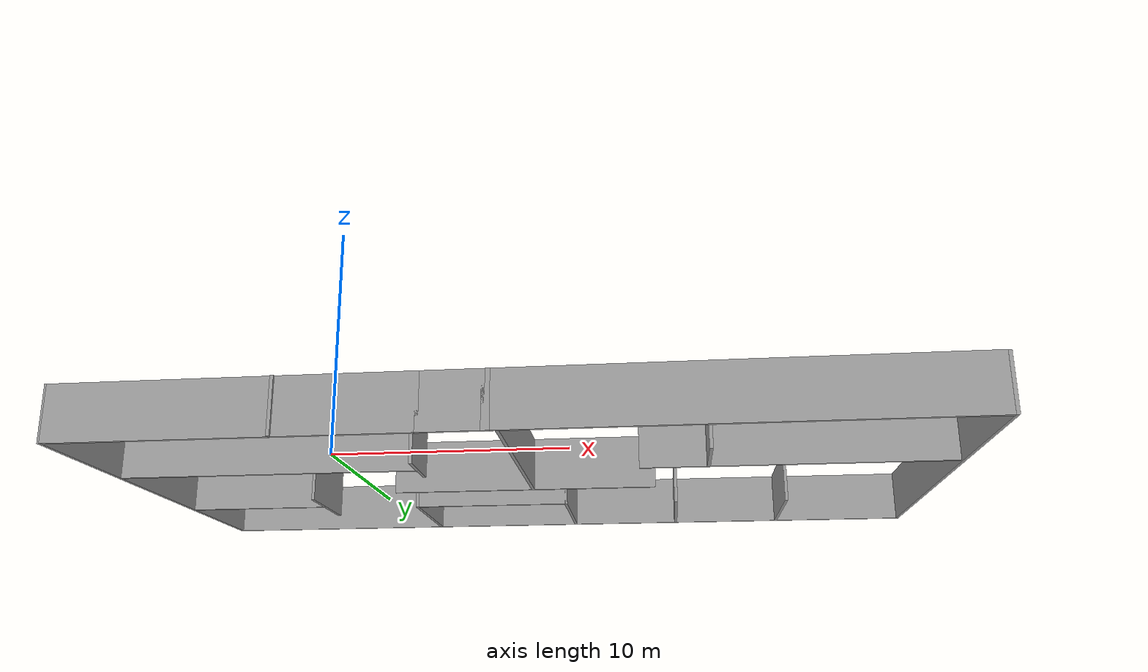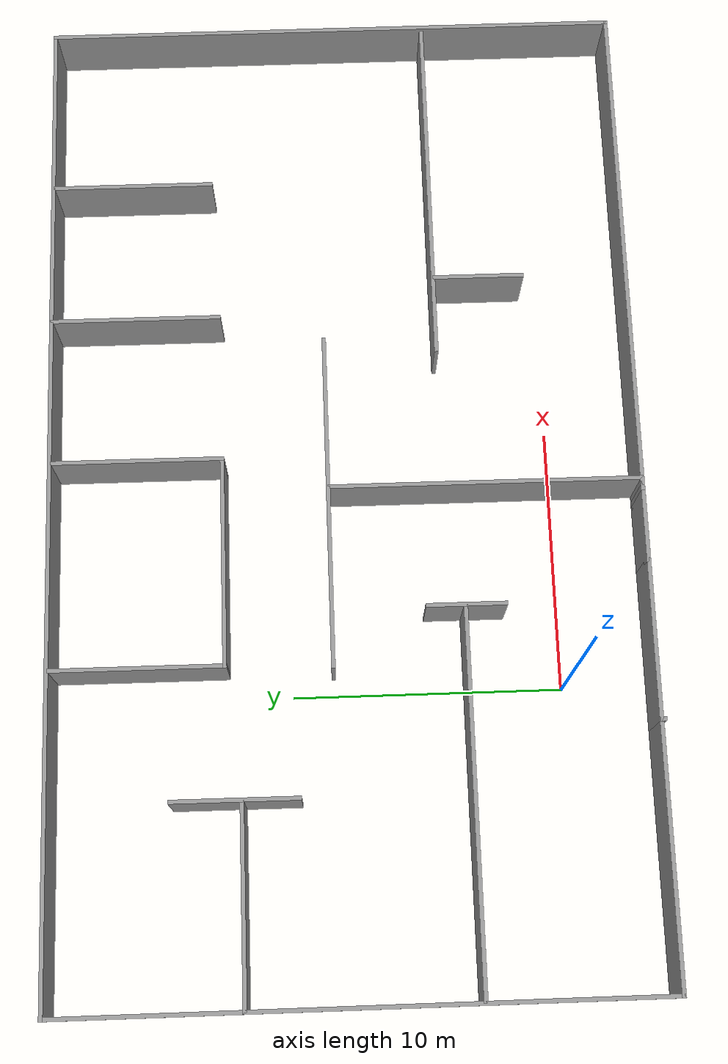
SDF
<?xml version='1.0'?>
<sdf version='1.6'>
  <model name='ObsWorld'>
    <pose frame=''>7.70483 7.77154 0 0 -0 0</pose>
    <link name='Wall_0'>
      <collision name='Wall_0_Collision'>
        <geometry>
          <box>
            <size>0.25 0.15 2.5</size>
          </box>
        </geometry>
        <pose frame=''>0 0 1.25 0 -0 0</pose>
      </collision>
      <visual name='Wall_0_Visual'>
        <pose frame=''>0 0 1.25 0 -0 0</pose>
        <geometry>
          <box>
            <size>0.25 0.15 2.5</size>
          </box>
        </geometry>
        <material>
          <script>
            <uri>file://media/materials/scripts/gazebo.material</uri>
            <name>Gazebo/Grey</name>
          </script>
          <ambient>1 1 1 1</ambient>
        </material>
        <meta>
          <layer>0</layer>
        </meta>
      </visual>
      <pose frame=''>-9.25933 -11.0588 0 0 -0 1.5708</pose>
    </link>
    <link name='Wall_1'>
      <collision name='Wall_1_Collision'>
        <geometry>
          <box>
            <size>6.05175 0.15 2.5</size>
          </box>
        </geometry>
        <pose frame=''>0 0 1.25 0 -0 0</pose>
      </collision>
      <visual name='Wall_1_Visual'>
        <pose frame=''>0 0 1.25 0 -0 0</pose>
        <geometry>
          <box>
            <size>6.05175 0.15 2.5</size>
          </box>
        </geometry>
        <material>
          <script>
            <uri>file://media/materials/scripts/gazebo.material</uri>
            <name>Gazebo/Grey</name>
          </script>
          <ambient>1 1 1 1</ambient>
        </material>
        <meta>
          <layer>0</layer>
        </meta>
      </visual>
      <pose frame=''>-6.32571 -10.9915 0 0 -0 0</pose>
    </link>
    <link name='Wall_10'>
      <collision name='Wall_10_Collision'>
        <geometry>
          <box>
            <size>9.69825 0.15 2.5</size>
          </box>
        </geometry>
        <pose frame=''>0 0 1.25 0 -0 0</pose>
      </collision>
      <visual name='Wall_10_Visual'>
        <pose frame=''>0 0 1.25 0 -0 0</pose>
        <geometry>
          <box>
            <size>9.69825 0.15 2.5</size>
          </box>
        </geometry>
        <material>
          <script>
            <uri>file://media/materials/scripts/gazebo.material</uri>
            <name>Gazebo/Grey</name>
          </script>
          <ambient>1 1 1 1</ambient>
        </material>
        <meta>
          <layer>0</layer>
        </meta>
      </visual>
      <pose frame=''>-14.0507 -10.9915 0 0 -0 0</pose>
    </link>
    <link name='Wall_2'>
      <collision name='Wall_2_Collision'>
        <geometry>
          <box>
            <size>2.75 0.15 2.5</size>
          </box>
        </geometry>
        <pose frame=''>0 0 1.25 0 -0 0</pose>
      </collision>
      <visual name='Wall_2_Visual'>
        <pose frame=''>0 0 1.25 0 -0 0</pose>
        <geometry>
          <box>
            <size>2.75 0.15 2.5</size>
          </box>
        </geometry>
        <material>
          <script>
            <uri>file://media/materials/scripts/gazebo.material</uri>
            <name>Gazebo/Grey</name>
          </script>
          <ambient>1 1 1 1</ambient>
        </material>
        <meta>
          <layer>0</layer>
        </meta>
      </visual>
      <pose frame=''>-2.07483 -10.9915 0 0 -0 0</pose>
    </link>
    <link name='Wall_27'>
      <collision name='Wall_27_Collision'>
        <geometry>
          <box>
            <size>14 0.15 2.5</size>
          </box>
        </geometry>
        <pose frame=''>0 0 1.25 0 -0 0</pose>
      </collision>
      <visual name='Wall_27_Visual'>
        <pose frame=''>0 0 1.25 0 -0 0</pose>
        <geometry>
          <box>
            <size>14 0.15 2.5</size>
          </box>
        </geometry>
        <material>
          <script>
            <uri>file://media/materials/scripts/gazebo.material</uri>
            <name>Gazebo/Grey</name>
          </script>
          <ambient>1 1 1 1</ambient>
        </material>
        <meta>
          <layer>0</layer>
        </meta>
      </visual>
      <pose frame=''>-11.8525 -4.17763 0 0 -0 0</pose>
    </link>
    <link name='Wall_29'>
      <collision name='Wall_29_Collision'>
        <geometry>
          <box>
            <size>7.25 0.15 2.5</size>
          </box>
        </geometry>
        <pose frame=''>0 0 1.25 0 -0 0</pose>
      </collision>
      <visual name='Wall_29_Visual'>
        <pose frame=''>0 0 1.25 0 -0 0</pose>
        <geometry>
          <box>
            <size>7.25 0.15 2.5</size>
          </box>
        </geometry>
        <material>
          <script>
            <uri>file://media/materials/scripts/gazebo.material</uri>
            <name>Gazebo/Grey</name>
          </script>
          <ambient>1 1 1 1</ambient>
        </material>
        <meta>
          <layer>0</layer>
        </meta>
      </visual>
      <pose frame=''>-15.2965 4.10237 0 0 -0 0</pose>
    </link>
    <link name='Wall_3'>
      <collision name='Wall_3_Collision'>
        <geometry>
          <box>
            <size>0.5 0.15 2.5</size>
          </box>
        </geometry>
        <pose frame=''>0 0 1.25 0 -0 0</pose>
      </collision>
      <visual name='Wall_3_Visual'>
        <pose frame=''>0 0 1.25 0 -0 0</pose>
        <geometry>
          <box>
            <size>0.5 0.15 2.5</size>
          </box>
        </geometry>
        <material>
          <script>
            <uri>file://media/materials/scripts/gazebo.material</uri>
            <name>Gazebo/Grey</name>
          </script>
          <ambient>1 1 1 1</ambient>
        </material>
        <meta>
          <layer>0</layer>
        </meta>
      </visual>
      <pose frame=''>-0.599831 -10.9915 0 0 -0 0</pose>
    </link>
    <link name='Wall_31'>
      <collision name='Wall_31_Collision'>
        <geometry>
          <box>
            <size>11.75 0.15 2.5</size>
          </box>
        </geometry>
        <pose frame=''>0 0 1.25 0 -0 0</pose>
      </collision>
      <visual name='Wall_31_Visual'>
        <pose frame=''>0 0 1.25 0 -0 0</pose>
        <geometry>
          <box>
            <size>11.75 0.15 2.5</size>
          </box>
        </geometry>
        <material>
          <script>
            <uri>file://media/materials/scripts/gazebo.material</uri>
            <name>Gazebo/Grey</name>
          </script>
          <ambient>1 1 1 1</ambient>
        </material>
        <meta>
          <layer>0</layer>
        </meta>
      </visual>
      <pose frame=''>-0.216502 -5.14763 0 0 -0 -1.5708</pose>
    </link>
    <link name='Wall_33'>
      <collision name='Wall_33_Collision'>
        <geometry>
          <box>
            <size>6.5 0.15 2.5</size>
          </box>
        </geometry>
        <pose frame=''>0 0 1.25 0 -0 0</pose>
      </collision>
      <visual name='Wall_33_Visual'>
        <pose frame=''>0 0 1.25 0 -0 0</pose>
        <geometry>
          <box>
            <size>6.5 0.15 2.5</size>
          </box>
        </geometry>
        <material>
          <script>
            <uri>file://media/materials/scripts/gazebo.material</uri>
            <name>Gazebo/Grey</name>
          </script>
          <ambient>1 1 1 1</ambient>
        </material>
        <meta>
          <layer>0</layer>
        </meta>
      </visual>
      <pose frame=''>6.6835 7.89637 0 0 -0 -1.5708</pose>
    </link>
    <link name='Wall_35'>
      <collision name='Wall_35_Collision'>
        <geometry>
          <box>
            <size>6.25 0.15 2.5</size>
          </box>
        </geometry>
        <pose frame=''>0 0 1.25 0 -0 0</pose>
      </collision>
      <visual name='Wall_35_Visual'>
        <pose frame=''>0 0 1.25 0 -0 0</pose>
        <geometry>
          <box>
            <size>6.25 0.15 2.5</size>
          </box>
        </geometry>
        <material>
          <script>
            <uri>file://media/materials/scripts/gazebo.material</uri>
            <name>Gazebo/Grey</name>
          </script>
          <ambient>1 1 1 1</ambient>
        </material>
        <meta>
          <layer>0</layer>
        </meta>
      </visual>
      <pose frame=''>12.2725 8.02137 0 0 -0 -1.5708</pose>
    </link>
    <link name='Wall_37'>
      <collision name='Wall_37_Collision'>
        <geometry>
          <box>
            <size>13.75 0.15 2.5</size>
          </box>
        </geometry>
        <pose frame=''>0 0 1.25 0 -0 0</pose>
      </collision>
      <visual name='Wall_37_Visual'>
        <pose frame=''>0 0 1.25 0 -0 0</pose>
        <geometry>
          <box>
            <size>13.75 0.15 2.5</size>
          </box>
        </geometry>
        <material>
          <script>
            <uri>file://media/materials/scripts/gazebo.material</uri>
            <name>Gazebo/Grey</name>
          </script>
          <ambient>1 1 1 1</ambient>
        </material>
        <meta>
          <layer>0</layer>
        </meta>
      </visual>
      <pose frame=''>11.8965 -3.55663 0 0 -0 0</pose>
    </link>
    <link name='Wall_39'>
      <collision name='Wall_39_Collision'>
        <geometry>
          <box>
            <size>3.5 0.15 2.5</size>
          </box>
        </geometry>
        <pose frame=''>0 0 1.25 0 -0 0</pose>
      </collision>
      <visual name='Wall_39_Visual'>
        <pose frame=''>0 0 1.25 0 -0 0</pose>
        <geometry>
          <box>
            <size>3.5 0.15 2.5</size>
          </box>
        </geometry>
        <material>
          <script>
            <uri>file://media/materials/scripts/gazebo.material</uri>
            <name>Gazebo/Grey</name>
          </script>
          <ambient>1 1 1 1</ambient>
        </material>
        <meta>
          <layer>0</layer>
        </meta>
      </visual>
      <pose frame=''>8.0635 -5.30063 0 0 -0 -1.5708</pose>
    </link>
    <link name='Wall_4'>
      <collision name='Wall_4_Collision'>
        <geometry>
          <box>
            <size>19.5 0.15 2.5</size>
          </box>
        </geometry>
        <pose frame=''>0 0 1.25 0 -0 0</pose>
      </collision>
      <visual name='Wall_4_Visual'>
        <pose frame=''>0 0 1.25 0 -0 0</pose>
        <geometry>
          <box>
            <size>19.5 0.15 2.5</size>
          </box>
        </geometry>
        <material>
          <script>
            <uri>file://media/materials/scripts/gazebo.material</uri>
            <name>Gazebo/Grey</name>
          </script>
          <ambient>1 1 1 1</ambient>
        </material>
        <meta>
          <layer>0</layer>
        </meta>
      </visual>
      <pose frame=''>9.25017 -10.9915 0 0 -0 0</pose>
    </link>
    <link name='Wall_41'>
      <collision name='Wall_41_Collision'>
        <geometry>
          <box>
            <size>6.5 0.15 2.5</size>
          </box>
        </geometry>
        <pose frame=''>0 0 1.25 0 -0 0</pose>
      </collision>
      <visual name='Wall_41_Visual'>
        <pose frame=''>0 0 1.25 0 -0 0</pose>
        <geometry>
          <box>
            <size>6.5 0.15 2.5</size>
          </box>
        </geometry>
        <material>
          <script>
            <uri>file://media/materials/scripts/gazebo.material</uri>
            <name>Gazebo/Grey</name>
          </script>
          <ambient>1 1 1 1</ambient>
        </material>
        <meta>
          <layer>0</layer>
        </meta>
      </visual>
      <pose frame=''>-6.8405 7.82737 0 0 -0 -1.5708</pose>
    </link>
    <link name='Wall_42'>
      <collision name='Wall_42_Collision'>
        <geometry>
          <box>
            <size>8 0.15 2.5</size>
          </box>
        </geometry>
        <pose frame=''>0 0 1.25 0 -0 0</pose>
      </collision>
      <visual name='Wall_42_Visual'>
        <pose frame=''>0 0 1.25 0 -0 0</pose>
        <geometry>
          <box>
            <size>8 0.15 2.5</size>
          </box>
        </geometry>
        <material>
          <script>
            <uri>file://media/materials/scripts/gazebo.material</uri>
            <name>Gazebo/Grey</name>
          </script>
          <ambient>1 1 1 1</ambient>
        </material>
        <meta>
          <layer>0</layer>
        </meta>
      </visual>
      <pose frame=''>-2.9155 4.65237 0 0 -0 0</pose>
    </link>
    <link name='Wall_43'>
      <collision name='Wall_43_Collision'>
        <geometry>
          <box>
            <size>6.5 0.15 2.5</size>
          </box>
        </geometry>
        <pose frame=''>0 0 1.25 0 -0 0</pose>
      </collision>
      <visual name='Wall_43_Visual'>
        <pose frame=''>0 0 1.25 0 -0 0</pose>
        <geometry>
          <box>
            <size>6.5 0.15 2.5</size>
          </box>
        </geometry>
        <material>
          <script>
            <uri>file://media/materials/scripts/gazebo.material</uri>
            <name>Gazebo/Grey</name>
          </script>
          <ambient>1 1 1 1</ambient>
        </material>
        <meta>
          <layer>0</layer>
        </meta>
      </visual>
      <pose frame=''>1.0095 7.82737 0 0 -0 1.5708</pose>
    </link>
    <link name='Wall_45'>
      <collision name='Wall_45_Collision'>
        <geometry>
          <box>
            <size>12.75 0.15 2.5</size>
          </box>
        </geometry>
        <pose frame=''>0 0 1.25 0 -0 0</pose>
      </collision>
      <visual name='Wall_45_Visual'>
        <pose frame=''>0 0 1.25 0 -0 0</pose>
        <geometry>
          <box>
            <size>12.75 0.15 2.5</size>
          </box>
        </geometry>
        <material>
          <script>
            <uri>file://media/materials/scripts/gazebo.material</uri>
            <name>Gazebo/Grey</name>
          </script>
          <ambient>1 1 1 1</ambient>
        </material>
        <meta>
          <layer>0</layer>
        </meta>
      </visual>
      <pose frame=''>-0.678502 0.72137 0 0 -0 0</pose>
    </link>
    <link name='Wall_47'>
      <collision name='Wall_47_Collision'>
        <geometry>
          <box>
            <size>4.75 0.15 2.5</size>
          </box>
        </geometry>
        <pose frame=''>0 0 1.25 0 -0 0</pose>
      </collision>
      <visual name='Wall_47_Visual'>
        <pose frame=''>0 0 1.25 0 -0 0</pose>
        <geometry>
          <box>
            <size>4.75 0.15 2.5</size>
          </box>
        </geometry>
        <material>
          <script>
            <uri>file://media/materials/scripts/gazebo.material</uri>
            <name>Gazebo/Grey</name>
          </script>
          <ambient>1 1 1 1</ambient>
        </material>
        <meta>
          <layer>0</layer>
        </meta>
      </visual>
      <pose frame=''>-11.6705 4.35537 0 0 -0 -1.5708</pose>
    </link>
    <link name='Wall_49'>
      <collision name='Wall_49_Collision'>
        <geometry>
          <box>
            <size>3 0.15 2.5</size>
          </box>
        </geometry>
        <pose frame=''>0 0 1.25 0 -0 0</pose>
      </collision>
      <visual name='Wall_49_Visual'>
        <pose frame=''>0 0 1.25 0 -0 0</pose>
        <geometry>
          <box>
            <size>3 0.15 2.5</size>
          </box>
        </geometry>
        <material>
          <script>
            <uri>file://media/materials/scripts/gazebo.material</uri>
            <name>Gazebo/Grey</name>
          </script>
          <ambient>1 1 1 1</ambient>
        </material>
        <meta>
          <layer>0</layer>
        </meta>
      </visual>
      <pose frame=''>-4.8395 -4.22263 0 0 -0 -1.5708</pose>
    </link>
    <link name='Wall_5'>
      <collision name='Wall_5_Collision'>
        <geometry>
          <box>
            <size>22.25 0.15 2.5</size>
          </box>
        </geometry>
        <pose frame=''>0 0 1.25 0 -0 0</pose>
      </collision>
      <visual name='Wall_5_Visual'>
        <pose frame=''>0 0 1.25 0 -0 0</pose>
        <geometry>
          <box>
            <size>22.25 0.15 2.5</size>
          </box>
        </geometry>
        <material>
          <script>
            <uri>file://media/materials/scripts/gazebo.material</uri>
            <name>Gazebo/Grey</name>
          </script>
          <ambient>1 1 1 1</ambient>
        </material>
        <meta>
          <layer>0</layer>
        </meta>
      </visual>
      <pose frame=''>18.9252 0.058455 0 0 -0 1.5708</pose>
    </link>
    <link name='Wall_8'>
      <collision name='Wall_8_Collision'>
        <geometry>
          <box>
            <size>38 0.15 2.5</size>
          </box>
        </geometry>
        <pose frame=''>0 0 1.25 0 -0 0</pose>
      </collision>
      <visual name='Wall_8_Visual'>
        <pose frame=''>0 0 1.25 0 -0 0</pose>
        <geometry>
          <box>
            <size>38 0.15 2.5</size>
          </box>
        </geometry>
        <material>
          <script>
            <uri>file://media/materials/scripts/gazebo.material</uri>
            <name>Gazebo/Grey</name>
          </script>
          <ambient>1 1 1 1</ambient>
        </material>
        <meta>
          <layer>0</layer>
        </meta>
      </visual>
      <pose frame=''>0.000169 11.1085 0 0 -0 3.14159</pose>
    </link>
    <link name='Wall_9'>
      <collision name='Wall_9_Collision'>
        <geometry>
          <box>
            <size>22.2502 0.15 2.5</size>
          </box>
        </geometry>
        <pose frame=''>0 0 1.25 0 -0 0</pose>
      </collision>
      <visual name='Wall_9_Visual'>
        <pose frame=''>0 0 1.25 0 -0 0</pose>
        <geometry>
          <box>
            <size>22.2502 0.15 2.5</size>
          </box>
        </geometry>
        <material>
          <script>
            <uri>file://media/materials/scripts/gazebo.material</uri>
            <name>Gazebo/Grey</name>
          </script>
          <ambient>1 1 1 1</ambient>
        </material>
        <meta>
          <layer>0</layer>
        </meta>
      </visual>
      <pose frame=''>-18.8748 0.058455 0 0 -0 -1.56627</pose>
    </link>
    <static>1</static>
  </model>
</sdf>
